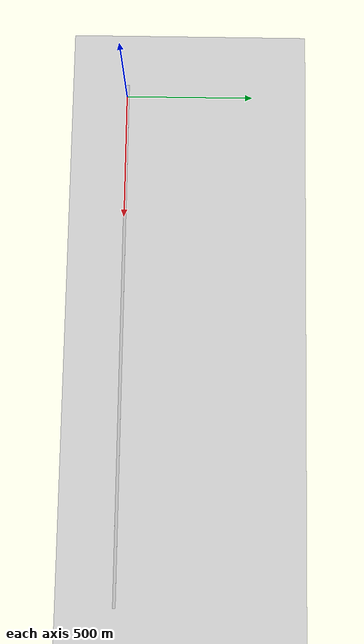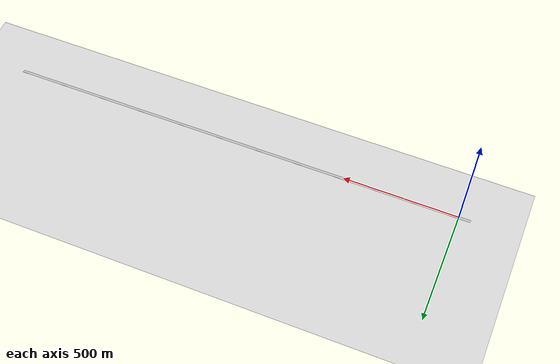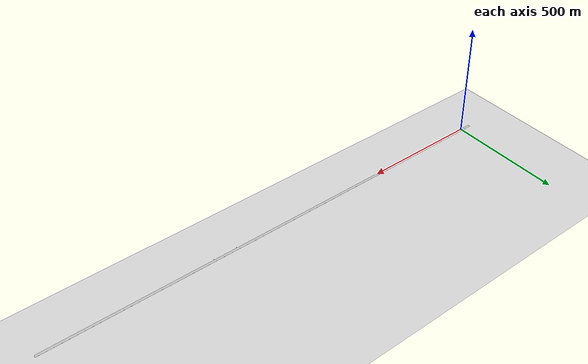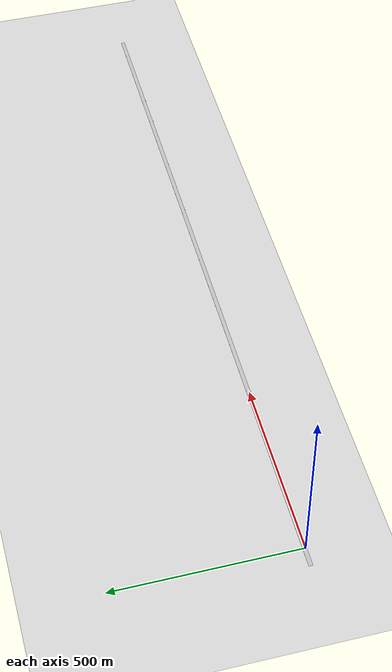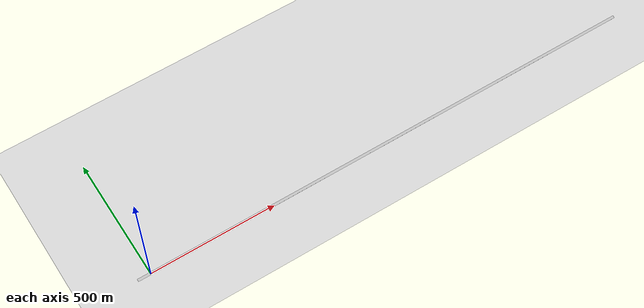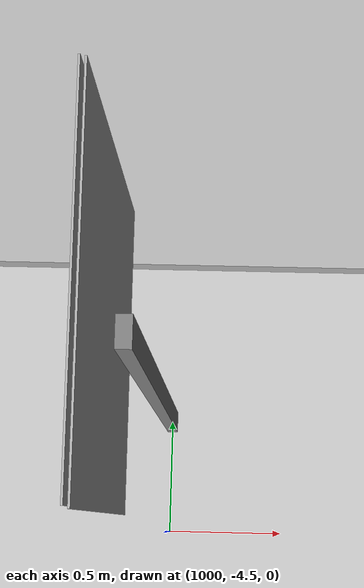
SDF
<sdf version="1.6">
 <world name="default">
  <light name="sun" type="directional">
   <pose>95.0196 103.283 10 0 -0 0</pose>
   <diffuse>0.8 0.8 0.8 1</diffuse>
   <specular>0.2 0.2 0.2 1</specular>
   <attenuation>
    <range>1000</range>
    <constant>0.9</constant>
    <linear>0.01</linear>
    <quadratic>0.001</quadratic>
   </attenuation>
   <direction>-0.5 0.1 -0.9</direction>
  </light>
  <gravity>0 0 -9.8</gravity>
  <magnetic_field>6e-06 2.3e-05 -4.2e-05</magnetic_field>
  <atmosphere type="adiabatic"/>
  <physics name="default_physics" default="0" type="ode">
   <max_step_size>0.001</max_step_size>
   <real_time_factor>1</real_time_factor>
   <real_time_update_rate>1000</real_time_update_rate>
  </physics>
  <scene><ambient>0.4 0.4 0.4 1</ambient><background>0.7 0.7 0.7 1</background><shadows>1</shadows></scene>
  <audio><device>default</device></audio>
  <spherical_coordinates>
   <surface_model>EARTH_WGS84</surface_model>
   <latitude_deg>0</latitude_deg>
   <longitude_deg>0</longitude_deg>
   <elevation>0</elevation>
   <heading_deg>0</heading_deg>
  </spherical_coordinates>
  <model name="ground_plane">
   <static>1</static>
   <link name="link">
    <collision name="collision">
     <geometry><plane><normal>0 0 1</normal><size>100 100</size></plane></geometry>
     <surface><friction><ode><mu>100</mu><mu2>50</mu2></ode></friction></surface>
    </collision>
    <visual name="visual">
     <cast_shadows>0</cast_shadows>
     <geometry><plane><normal>0 0 1</normal><size>10000 10000</size></plane></geometry>
     <material>
      <script><uri>file://media/materials/scripts/gazebo.material</uri><name>Gazebo/Grey</name></script>
     </material>
    </visual>
   </link>
  </model>
  <model name="(DS) Straight Road - 2000m">
   <static>1</static>
   <link name="link">
    <inertial>
     <mass>1</mass>
     <inertia><ixx>1</ixx><iyy>1</iyy><izz>1</izz><ixy>0</ixy><ixz>0</ixz><iyz>0</iyz></inertia>
    </inertial>
    <collision name="collision">
     <geometry><mesh><uri>model://ds_straight_road_2000m/meshes/straight_road_2000m.dae</uri></mesh></geometry>
    </collision>
    <visual name="visual">
     <geometry><mesh><uri>model://ds_straight_road_2000m/meshes/straight_road_2000m.dae</uri></mesh></geometry>
    </visual>
   </link>
   <pose>1000 12.2188 0 0 -0 0</pose>
  </model>
  <model name="(DS) Straight Road - 50m">
   <static>1</static>
   <link name="link">
    <inertial>
     <mass>1</mass>
     <inertia><ixx>1</ixx><iyy>1</iyy><izz>1</izz><ixy>0</ixy><ixz>0</ixz><iyz>0</iyz></inertia>
    </inertial>
    <collision name="collision">
     <geometry><mesh><uri>model://ds_straight_road_50m/meshes/straight_road_50m.dae</uri></mesh></geometry>
    </collision>
    <visual name="visual">
     <geometry><mesh><uri>model://ds_straight_road_50m/meshes/straight_road_50m.dae</uri></mesh></geometry>
    </visual>
   </link>
   <pose>-24.9981 12.2189 0 0 -0 0</pose>
  </model>
  <model name="speed_10">
   <link name="link">
    <collision name="collision">
     <geometry><mesh><scale>1 1 1</scale><uri>model://speed_10/meshes/speedlim_10.dae</uri></mesh></geometry>
    </collision>
    <visual name="visual">
     <geometry><mesh><scale>1 1 1</scale><uri>model://speed_10/meshes/speedlim_10.dae</uri></mesh></geometry>
    </visual>
    <inertial>
     <inertia><ixx>1</ixx><ixy>0</ixy><ixz>0</ixz><iyy>1</iyy><iyz>0</iyz><izz>1</izz></inertia>
     <mass>1</mass>
    </inertial>
   </link>
   <pose>100 -4 0.002221 1e-06 5e-06 -3.14159</pose>
  </model>
  <model name="speed_10_0">
   <link name="link">
    <collision name="collision">
     <geometry><mesh><scale>1 1 1</scale><uri>model://speed_10/meshes/speedlim_10.dae</uri></mesh></geometry>
    </collision>
    <visual name="visual">
     <geometry><mesh><scale>1 1 1</scale><uri>model://speed_10/meshes/speedlim_10.dae</uri></mesh></geometry>
    </visual>
    <inertial>
     <inertia><ixx>1</ixx><ixy>0</ixy><ixz>0</ixz><iyy>1</iyy><iyz>0</iyz><izz>1</izz></inertia>
     <mass>1</mass>
    </inertial>
   </link>
   <pose>700 -4 0.00223 0 6e-06 -3.14158</pose>
  </model>
  <model name="speed_10_1">
   <link name="link">
    <collision name="collision">
     <geometry><mesh><scale>1 1 1</scale><uri>model://speed_10/meshes/speedlim_10.dae</uri></mesh></geometry>
    </collision>
    <visual name="visual">
     <geometry><mesh><scale>1 1 1</scale><uri>model://speed_10/meshes/speedlim_10.dae</uri></mesh></geometry>
    </visual>
    <inertial>
     <inertia><ixx>1</ixx><ixy>0</ixy><ixz>0</ixz><iyy>1</iyy><iyz>0</iyz><izz>1</izz></inertia>
     <mass>1</mass>
    </inertial>
   </link>
   <pose>1100 -4 0.002221 0 5e-06 -3.14158</pose>
  </model>
  <model name="speed_10_2">
   <link name="link">
    <collision name="collision">
     <geometry><mesh><scale>1 1 1</scale><uri>model://speed_10/meshes/speedlim_10.dae</uri></mesh></geometry>
    </collision>
    <visual name="visual">
     <geometry><mesh><scale>1 1 1</scale><uri>model://speed_10/meshes/speedlim_10.dae</uri></mesh></geometry>
    </visual>
    <inertial>
     <inertia><ixx>1</ixx><ixy>0</ixy><ixz>0</ixz><iyy>1</iyy><iyz>0</iyz><izz>1</izz></inertia>
     <mass>1</mass>
    </inertial>
   </link>
   <pose>1300 -4 0.00223 0 5e-06 -3.14158</pose>
  </model>
  <model name="speed_15">
   <link name="link">
    <collision name="collision">
     <geometry><mesh><scale>1 1 1</scale><uri>model://speed_15/meshes/speedlim_15.dae</uri></mesh></geometry>
    </collision>
    <visual name="visual">
     <geometry><mesh><scale>1 1 1</scale><uri>model://speed_15/meshes/speedlim_15.dae</uri></mesh></geometry>
    </visual>
    <inertial>
     <inertia><ixx>1</ixx><ixy>0</ixy><ixz>0</ixz><iyy>1</iyy><iyz>0</iyz><izz>1</izz></inertia>
     <mass>1</mass>
    </inertial>
   </link>
   <pose>200 -4 0.00223 0 5e-06 -3.14158</pose>
  </model>
  <model name="speed_15_0">
   <link name="link">
    <collision name="collision">
     <geometry><mesh><scale>1 1 1</scale><uri>model://speed_15/meshes/speedlim_15.dae</uri></mesh></geometry>
    </collision>
    <visual name="visual">
     <geometry><mesh><scale>1 1 1</scale><uri>model://speed_15/meshes/speedlim_15.dae</uri></mesh></geometry>
    </visual>
    <inertial>
     <inertia><ixx>1</ixx><ixy>0</ixy><ixz>0</ixz><iyy>1</iyy><iyz>0</iyz><izz>1</izz></inertia>
     <mass>1</mass>
    </inertial>
   </link>
   <pose>600 -4 0.002221 0 5e-06 -3.14158</pose>
  </model>
  <model name="speed_15_1">
   <link name="link">
    <collision name="collision">
     <geometry><mesh><scale>1 1 1</scale><uri>model://speed_15/meshes/speedlim_15.dae</uri></mesh></geometry>
    </collision>
    <visual name="visual">
     <geometry><mesh><scale>1 1 1</scale><uri>model://speed_15/meshes/speedlim_15.dae</uri></mesh></geometry>
    </visual>
    <inertial>
     <inertia><ixx>1</ixx><ixy>0</ixy><ixz>0</ixz><iyy>1</iyy><iyz>0</iyz><izz>1</izz></inertia>
     <mass>1</mass>
    </inertial>
   </link>
   <pose>1900 -4 0.002221 1e-06 5e-06 -3.14158</pose>
  </model>
  <model name="speed_20">
   <link name="link">
    <collision name="collision">
     <geometry><mesh><scale>1 1 1</scale><uri>model://speed_20/meshes/speedlim_20.dae</uri></mesh></geometry>
    </collision>
    <visual name="visual">
     <geometry><mesh><scale>1 1 1</scale><uri>model://speed_20/meshes/speedlim_20.dae</uri></mesh></geometry>
    </visual>
    <inertial>
     <inertia><ixx>1</ixx><ixy>0</ixy><ixz>0</ixz><iyy>1</iyy><iyz>0</iyz><izz>1</izz></inertia>
     <mass>1</mass>
    </inertial>
   </link>
   <pose>300 -4 0.00223 0 5e-06 -3.14158</pose>
  </model>
  <model name="speed_20_0">
   <link name="link">
    <collision name="collision">
     <geometry><mesh><scale>1 1 1</scale><uri>model://speed_20/meshes/speedlim_20.dae</uri></mesh></geometry>
    </collision>
    <visual name="visual">
     <geometry><mesh><scale>1 1 1</scale><uri>model://speed_20/meshes/speedlim_20.dae</uri></mesh></geometry>
    </visual>
    <inertial>
     <inertia><ixx>1</ixx><ixy>0</ixy><ixz>0</ixz><iyy>1</iyy><iyz>0</iyz><izz>1</izz></inertia>
     <mass>1</mass>
    </inertial>
   </link>
   <pose>500 -4 0.002221 1e-06 4e-06 -3.14158</pose>
  </model>
  <model name="speed_20_1">
   <link name="link">
    <collision name="collision">
     <geometry><mesh><scale>1 1 1</scale><uri>model://speed_20/meshes/speedlim_20.dae</uri></mesh></geometry>
    </collision>
    <visual name="visual">
     <geometry><mesh><scale>1 1 1</scale><uri>model://speed_20/meshes/speedlim_20.dae</uri></mesh></geometry>
    </visual>
    <inertial>
     <inertia><ixx>1</ixx><ixy>0</ixy><ixz>0</ixz><iyy>1</iyy><iyz>0</iyz><izz>1</izz></inertia>
     <mass>1</mass>
    </inertial>
   </link>
   <pose>800 -4 0.002221 1e-06 5e-06 -3.14158</pose>
  </model>
  <model name="speed_20_2">
   <link name="link">
    <collision name="collision">
     <geometry><mesh><scale>1 1 1</scale><uri>model://speed_20/meshes/speedlim_20.dae</uri></mesh></geometry>
    </collision>
    <visual name="visual">
     <geometry><mesh><scale>1 1 1</scale><uri>model://speed_20/meshes/speedlim_20.dae</uri></mesh></geometry>
    </visual>
    <inertial>
     <inertia><ixx>1</ixx><ixy>0</ixy><ixz>0</ixz><iyy>1</iyy><iyz>0</iyz><izz>1</izz></inertia>
     <mass>1</mass>
    </inertial>
   </link>
   <pose>1000 -4 0.00222 1e-06 4e-06 -3.14158</pose>
  </model>
  <model name="speed_20_3">
   <link name="link">
    <collision name="collision">
     <geometry><mesh><scale>1 1 1</scale><uri>model://speed_20/meshes/speedlim_20.dae</uri></mesh></geometry>
    </collision>
    <visual name="visual">
     <geometry><mesh><scale>1 1 1</scale><uri>model://speed_20/meshes/speedlim_20.dae</uri></mesh></geometry>
    </visual>
    <inertial>
     <inertia><ixx>1</ixx><ixy>0</ixy><ixz>0</ixz><iyy>1</iyy><iyz>0</iyz><izz>1</izz></inertia>
     <mass>1</mass>
    </inertial>
   </link>
   <pose>1400 -4 0.002221 2e-06 8e-06 -3.14158</pose>
  </model>
  <model name="speed_20_4">
   <link name="link">
    <collision name="collision">
     <geometry><mesh><scale>1 1 1</scale><uri>model://speed_20/meshes/speedlim_20.dae</uri></mesh></geometry>
    </collision>
    <visual name="visual">
     <geometry><mesh><scale>1 1 1</scale><uri>model://speed_20/meshes/speedlim_20.dae</uri></mesh></geometry>
    </visual>
    <inertial>
     <inertia><ixx>1</ixx><ixy>0</ixy><ixz>0</ixz><iyy>1</iyy><iyz>0</iyz><izz>1</izz></inertia>
     <mass>1</mass>
    </inertial>
   </link>
   <pose>1800 -4 0.002221 0 4e-06 -3.14158</pose>
  </model>
  <model name="speed_25">
   <link name="link">
    <collision name="collision">
     <geometry><mesh><scale>1 1 1</scale><uri>model://speed_25/meshes/speedlim_25.dae</uri></mesh></geometry>
    </collision>
    <visual name="visual">
     <geometry><mesh><scale>1 1 1</scale><uri>model://speed_25/meshes/speedlim_25.dae</uri></mesh></geometry>
    </visual>
    <inertial>
     <inertia><ixx>1</ixx><ixy>0</ixy><ixz>0</ixz><iyy>1</iyy><iyz>0</iyz><izz>1</izz></inertia>
     <mass>1</mass>
    </inertial>
   </link>
   <pose>400 -4 0.00223 0 5e-06 -3.14158</pose>
  </model>
  <model name="speed_25_0">
   <link name="link">
    <collision name="collision">
     <geometry><mesh><scale>1 1 1</scale><uri>model://speed_25/meshes/speedlim_25.dae</uri></mesh></geometry>
    </collision>
    <visual name="visual">
     <geometry><mesh><scale>1 1 1</scale><uri>model://speed_25/meshes/speedlim_25.dae</uri></mesh></geometry>
    </visual>
    <inertial>
     <inertia><ixx>1</ixx><ixy>0</ixy><ixz>0</ixz><iyy>1</iyy><iyz>0</iyz><izz>1</izz></inertia>
     <mass>1</mass>
    </inertial>
   </link>
   <pose>1500 -4 0.00223 0 5e-06 -3.14158</pose>
  </model>
  <model name="speed_25_1">
   <link name="link">
    <collision name="collision">
     <geometry><mesh><scale>1 1 1</scale><uri>model://speed_25/meshes/speedlim_25.dae</uri></mesh></geometry>
    </collision>
    <visual name="visual">
     <geometry><mesh><scale>1 1 1</scale><uri>model://speed_25/meshes/speedlim_25.dae</uri></mesh></geometry>
    </visual>
    <inertial>
     <inertia><ixx>1</ixx><ixy>0</ixy><ixz>0</ixz><iyy>1</iyy><iyz>0</iyz><izz>1</izz></inertia>
     <mass>1</mass>
    </inertial>
   </link>
   <pose>1700 -4 0.00223 0 5e-06 -3.14158</pose>
  </model>
  <model name="speed_30">
   <link name="link">
    <collision name="collision">
     <geometry><mesh><scale>1 1 1</scale><uri>model://speed_30/meshes/speedlim_30.dae</uri></mesh></geometry>
    </collision>
    <visual name="visual">
     <geometry><mesh><scale>1 1 1</scale><uri>model://speed_30/meshes/speedlim_30.dae</uri></mesh></geometry>
    </visual>
    <inertial>
     <inertia><ixx>1</ixx><ixy>0</ixy><ixz>0</ixz><iyy>1</iyy><iyz>0</iyz><izz>1</izz></inertia>
     <mass>1</mass>
    </inertial>
   </link>
   <pose>900 -4 0.00223 0 5e-06 -3.14158</pose>
  </model>
  <model name="speed_30_0">
   <link name="link">
    <collision name="collision">
     <geometry><mesh><scale>1 1 1</scale><uri>model://speed_30/meshes/speedlim_30.dae</uri></mesh></geometry>
    </collision>
    <visual name="visual">
     <geometry><mesh><scale>1 1 1</scale><uri>model://speed_30/meshes/speedlim_30.dae</uri></mesh></geometry>
    </visual>
    <inertial>
     <inertia><ixx>1</ixx><ixy>0</ixy><ixz>0</ixz><iyy>1</iyy><iyz>0</iyz><izz>1</izz></inertia>
     <mass>1</mass>
    </inertial>
   </link>
   <pose>1200 -4 0.002222 1e-06 4e-06 -3.14158</pose>
  </model>
  <model name="speed_30_1">
   <link name="link">
    <collision name="collision">
     <geometry><mesh><scale>1 1 1</scale><uri>model://speed_30/meshes/speedlim_30.dae</uri></mesh></geometry>
    </collision>
    <visual name="visual">
     <geometry><mesh><scale>1 1 1</scale><uri>model://speed_30/meshes/speedlim_30.dae</uri></mesh></geometry>
    </visual>
    <inertial>
     <inertia><ixx>1</ixx><ixy>0</ixy><ixz>0</ixz><iyy>1</iyy><iyz>0</iyz><izz>1</izz></inertia>
     <mass>1</mass>
    </inertial>
   </link>
   <pose>1600 -4 0.00223 1e-06 1e-05 -3.14158</pose>
  </model>
 </world>
</sdf>
